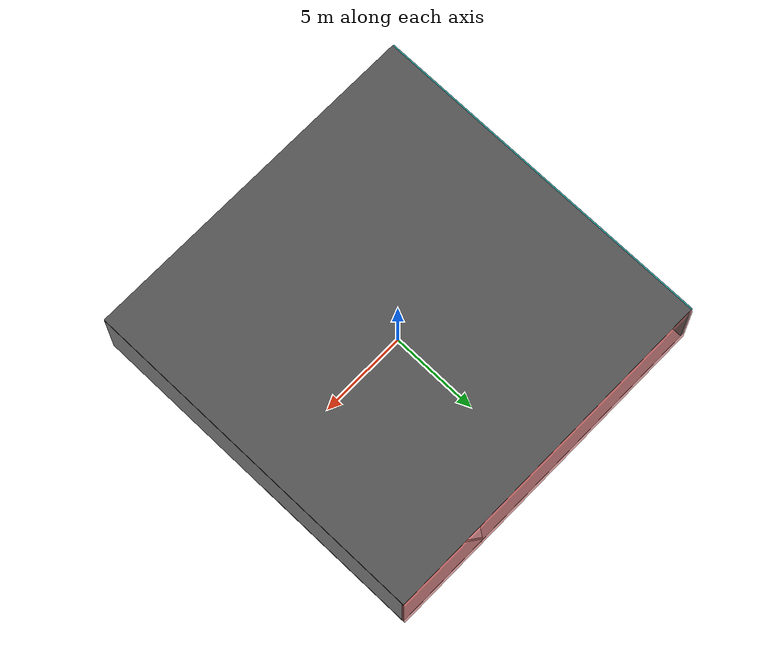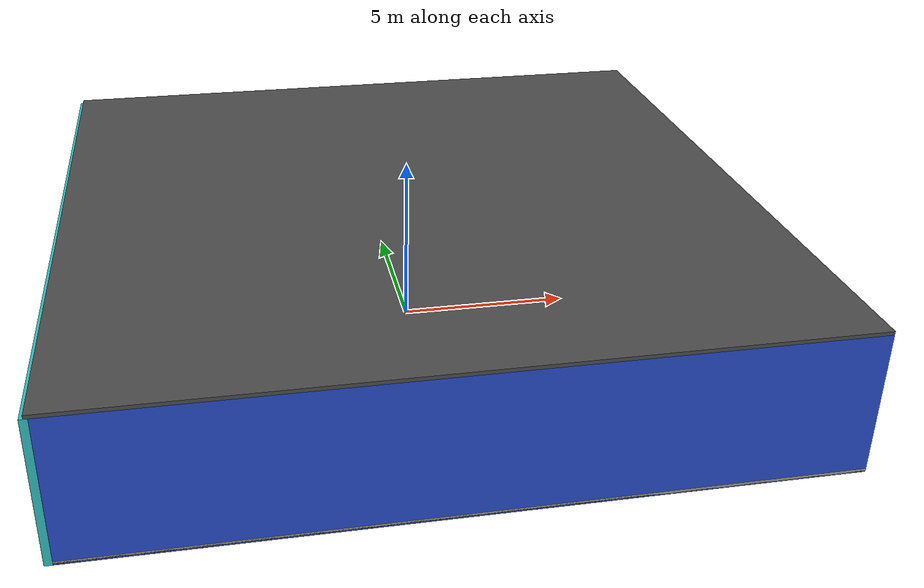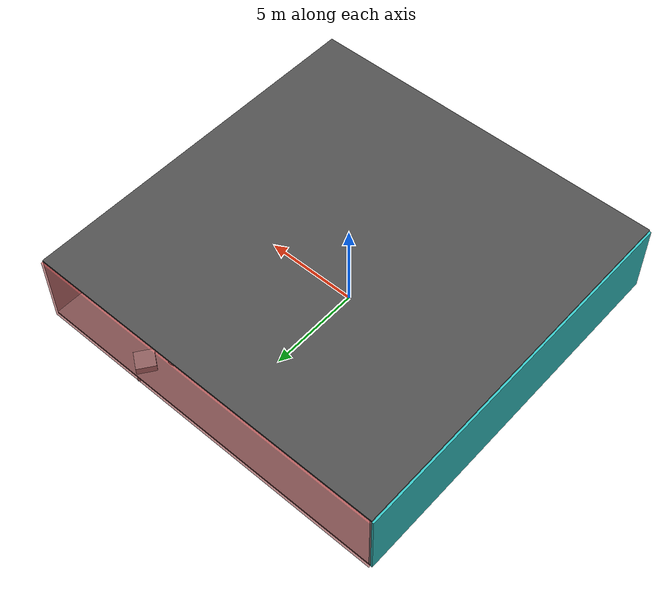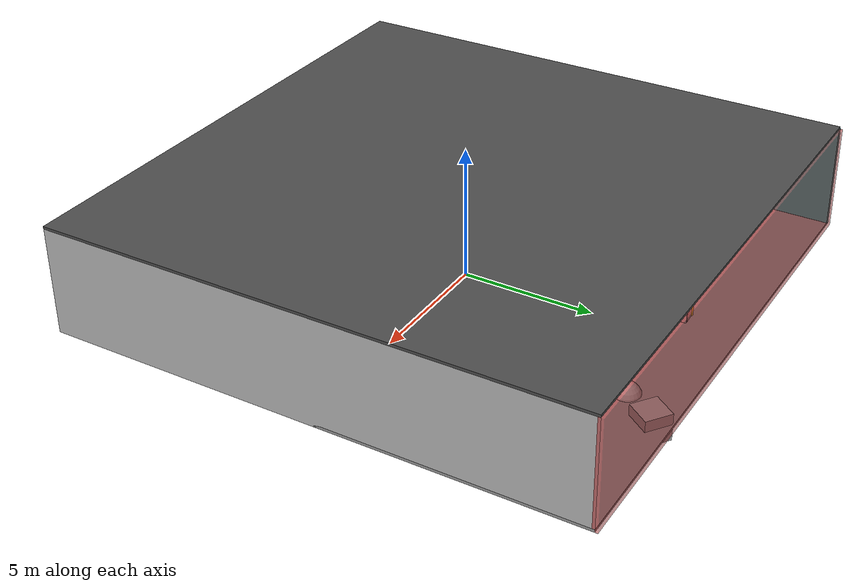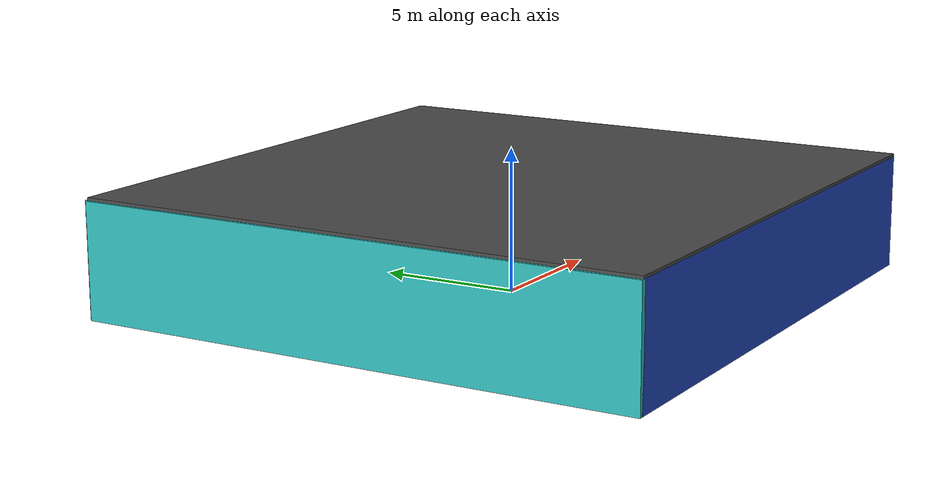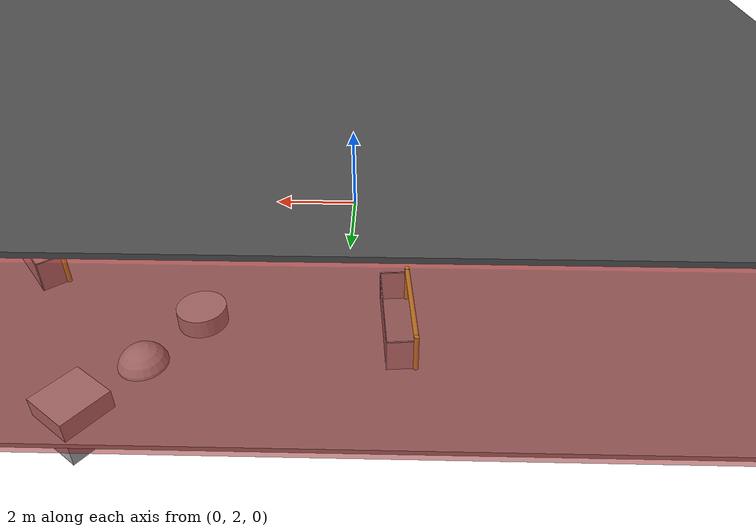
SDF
<sdf version="1.4">
 <world name="default">
  <physics type="ode">
   <max_step_size>0.001</max_step_size>
   <real_time_factor>1</real_time_factor>
   <real_time_update_rate>1000</real_time_update_rate>
   <gravity>0 0 -9.8</gravity>
  </physics>
  <scene><ambient>0.4 0.4 0.4 1</ambient><background>0.7 0.7 0.7 1</background><shadows>1</shadows></scene>
  <model name="Surrounding">
   <static>1</static>
   <link name="Ceiling">
    <collision name="Ceiling_Collision"><geometry><box><size>20 20 0.1</size></box></geometry></collision>
    <visual name="Ceiling_Visual">
     <geometry><box><size>20 20 0.1</size></box></geometry>
     <material>
      <script><uri>file://media/materials/scripts/gazebo.material</uri><name>Gazebo/Road</name></script>
     </material>
    </visual>
    <pose>0 0 4.05 0 0 0</pose>
   </link>
   <link name="Wall_South">
    <collision name="Wall_South_Collision">
     <geometry><box><size>20 0 4</size></box></geometry>
     <pose>0 0 2 0 -0 0</pose>
    </collision>
    <visual name="Wall_South_Visual">
     <pose>0 0 2 0 -0 0</pose>
     <geometry><box><size>20 0 4</size></box></geometry>
     <material>
      <script><uri>file://media/materials/scripts/gazebo.material</uri><name>Gazebo/BlueLaser</name></script>
     </material>
    </visual>
    <velocity_decay><linear>0</linear><angular>0</angular></velocity_decay>
    <pose>0 -10 0 0 -0 0</pose>
   </link>
   <link name="Wall_East">
    <collision name="Wall_21_Collision">
     <geometry><box><size>20 0 4</size></box></geometry>
     <pose>0 0 2 0 -0 0</pose>
    </collision>
    <visual name="Wall_21_Visual">
     <pose>0 0 2 0 -0 0</pose>
     <geometry><box><size>20 0 4</size></box></geometry>
     <material>
      <script><uri>file://media/materials/scripts/gazebo.material</uri><name>Gazebo/JointAnchor</name></script>
     </material>
    </visual>
    <velocity_decay><linear>0</linear><angular>0</angular></velocity_decay>
    <pose>10 0 0 0 -0 1.5708</pose>
   </link>
   <link name="Wall_North">
    <collision name="Wall_22_Collision">
     <geometry><box><size>20 0.2 4</size></box></geometry>
     <pose>0 0 2 0 -0 0</pose>
    </collision>
    <visual name="Wall_22_Visual">
     <pose>0 0 2 0 -0 0</pose>
     <geometry><box><size>20 0.2 4</size></box></geometry>
     <material>
      <script><uri>file://media/materials/scripts/gazebo.material</uri><name>Gazebo/RedTransparent</name></script>
     </material>
    </visual>
    <velocity_decay><linear>0</linear><angular>0</angular></velocity_decay>
    <pose>0 10 0 0 -0 0</pose>
   </link>
   <link name="Wall_West">
    <collision name="Wall_23_Collision">
     <geometry><box><size>20 0.2 4</size></box></geometry>
     <pose>0 0 2 0 -0 0</pose>
    </collision>
    <visual name="Wall_23_Visual">
     <pose>0 0 2 0 -0 0</pose>
     <geometry><box><size>20 0.2 4</size></box></geometry>
     <material>
      <script>
       <uri>file://media/materials/scripts/gazebo.material</uri>
       <name>Gazebo/TurquoiseGlowOutline</name>
      </script>
     </material>
    </visual>
    <velocity_decay><linear>0</linear><angular>0</angular></velocity_decay>
    <pose>-10 0 0 0 0 -1.5708</pose>
   </link>
   <link name="Ground_link">
    <collision name="collision">
     <pose>0 0 .05 0 -0 0</pose>
     <geometry><box><size>20 20 0.1</size></box></geometry>
    </collision>
    <visual name="visual">
     <pose>0 0 .05 0 -0 0</pose>
     <geometry><box><size>20 20 0.1</size></box></geometry>
     <material>
      <script><uri>file://media/materials/scripts/gazebo.material</uri><name>Gazebo/Grey</name></script>
     </material>
    </visual>
   </link>
   <static>1</static>
  </model>
  <spherical_coordinates>
   <surface_model>EARTH_WGS84</surface_model>
   <latitude_deg>0</latitude_deg>
   <longitude_deg>0</longitude_deg>
   <elevation>0</elevation>
   <heading_deg>0</heading_deg>
  </spherical_coordinates>
  <light name="lightball_0" type="diffuse">
   <diffuse>0.8 0.8 0.8 1</diffuse>
   <specular>0.2 0.2 0.2 1</specular>
   <attenuation>
    <range>100</range>
    <constant>0.7</constant>
    <linear>0.01</linear>
    <quadratic>0.001</quadratic>
   </attenuation>
   <direction>-0.5 0.1 -0.9</direction>
   <pose>-0.775403620595 7.07762670716 3.506652 0 0 0</pose>
  </light>
  <light name="lightball_1" type="diffuse">
   <diffuse>0.8 0.8 0.8 1</diffuse>
   <specular>0.2 0.2 0.2 1</specular>
   <attenuation>
    <range>100</range>
    <constant>0.7</constant>
    <linear>0.01</linear>
    <quadratic>0.001</quadratic>
   </attenuation>
   <direction>-0.5 0.1 -0.9</direction>
   <pose>-4.79180975204 8.19177250927 0.751852382206 0 0 0</pose>
  </light>
  <light name="lightball_2" type="diffuse">
   <diffuse>0.8 0.8 0.8 1</diffuse>
   <specular>0.2 0.2 0.2 1</specular>
   <attenuation>
    <range>100</range>
    <constant>0.7</constant>
    <linear>0.01</linear>
    <quadratic>0.001</quadratic>
   </attenuation>
   <direction>-0.5 0.1 -0.9</direction>
   <pose>3.6686765872 -2.72567659192 1.64141251857 0 0 0</pose>
  </light>
  <light name="lightball_3" type="diffuse">
   <diffuse>0.8 0.8 0.8 1</diffuse>
   <specular>0.2 0.2 0.2 1</specular>
   <attenuation>
    <range>100</range>
    <constant>0.7</constant>
    <linear>0.01</linear>
    <quadratic>0.001</quadratic>
   </attenuation>
   <direction>-0.5 0.1 -0.9</direction>
   <pose>-2.905698458 -8.21881280576 1.313402155 0 0 0</pose>
  </light>
  <light name="lightball_4" type="diffuse">
   <diffuse>0.8 0.8 0.8 1</diffuse>
   <specular>0.2 0.2 0.2 1</specular>
   <attenuation>
    <range>100</range>
    <constant>0.7</constant>
    <linear>0.01</linear>
    <quadratic>0.001</quadratic>
   </attenuation>
   <direction>-0.5 0.1 -0.9</direction>
   <pose>0.441042305721 0.861597721815 2.05817164727 0 0 0</pose>
  </light>
  <light name="lightball_5" type="diffuse">
   <diffuse>0.8 0.8 0.8 1</diffuse>
   <specular>0.2 0.2 0.2 1</specular>
   <attenuation>
    <range>100</range>
    <constant>0.7</constant>
    <linear>0.01</linear>
    <quadratic>0.001</quadratic>
   </attenuation>
   <direction>-0.5 0.1 -0.9</direction>
   <pose>-8.52657312798 -5.15577111114 2.26490155556 0 0 0</pose>
  </light>
  <light name="lightball_6" type="diffuse">
   <diffuse>0.8 0.8 0.8 1</diffuse>
   <specular>0.2 0.2 0.2 1</specular>
   <attenuation>
    <range>100</range>
    <constant>0.7</constant>
    <linear>0.01</linear>
    <quadratic>0.001</quadratic>
   </attenuation>
   <direction>-0.5 0.1 -0.9</direction>
   <pose>-5.38110983416 2.54185073829 2.12790783164 0 0 0</pose>
  </light>
  <light name="lightball_7" type="diffuse">
   <diffuse>0.8 0.8 0.8 1</diffuse>
   <specular>0.2 0.2 0.2 1</specular>
   <attenuation>
    <range>100</range>
    <constant>0.7</constant>
    <linear>0.01</linear>
    <quadratic>0.001</quadratic>
   </attenuation>
   <direction>-0.5 0.1 -0.9</direction>
   <pose>8.31191481723 -0.389704007689 3.43441586048 0 0 0</pose>
  </light>
  <light name="lightball_8" type="diffuse">
   <diffuse>0.8 0.8 0.8 1</diffuse>
   <specular>0.2 0.2 0.2 1</specular>
   <attenuation>
    <range>100</range>
    <constant>0.7</constant>
    <linear>0.01</linear>
    <quadratic>0.001</quadratic>
   </attenuation>
   <direction>-0.5 0.1 -0.9</direction>
   <pose>-8.05557475101 9.4612004826 0.771667790555 0 0 0</pose>
  </light>
  <light name="lightball_9" type="diffuse">
   <diffuse>0.8 0.8 0.8 1</diffuse>
   <specular>0.2 0.2 0.2 1</specular>
   <attenuation>
    <range>100</range>
    <constant>0.7</constant>
    <linear>0.01</linear>
    <quadratic>0.001</quadratic>
   </attenuation>
   <direction>-0.5 0.1 -0.9</direction>
   <pose>5.67901240545 5.59740378169 3.03395032299 0 0 0</pose>
  </light>
  <light name="lightball_10" type="diffuse">
   <diffuse>0.8 0.8 0.8 1</diffuse>
   <specular>0.2 0.2 0.2 1</specular>
   <attenuation>
    <range>100</range>
    <constant>0.7</constant>
    <linear>0.01</linear>
    <quadratic>0.001</quadratic>
   </attenuation>
   <direction>-0.5 0.1 -0.9</direction>
   <pose>4.65199172884 7.17913042862 2.66395533294 0 0 0</pose>
  </light>
  <light name="lightball_11" type="diffuse">
   <diffuse>0.8 0.8 0.8 1</diffuse>
   <specular>0.2 0.2 0.2 1</specular>
   <attenuation>
    <range>100</range>
    <constant>0.7</constant>
    <linear>0.01</linear>
    <quadratic>0.001</quadratic>
   </attenuation>
   <direction>-0.5 0.1 -0.9</direction>
   <pose>6.62067206168 -4.39592074499 0.578176307679 0 0 0</pose>
  </light>
  <light name="lightball_12" type="diffuse">
   <diffuse>0.8 0.8 0.8 1</diffuse>
   <specular>0.2 0.2 0.2 1</specular>
   <attenuation>
    <range>100</range>
    <constant>0.7</constant>
    <linear>0.01</linear>
    <quadratic>0.001</quadratic>
   </attenuation>
   <direction>-0.5 0.1 -0.9</direction>
   <pose>-0.360181140788 6.11689497972 2.09764898158 0 0 0</pose>
  </light>
  <light name="lightball_13" type="diffuse">
   <diffuse>0.8 0.8 0.8 1</diffuse>
   <specular>0.2 0.2 0.2 1</specular>
   <attenuation>
    <range>100</range>
    <constant>0.7</constant>
    <linear>0.01</linear>
    <quadratic>0.001</quadratic>
   </attenuation>
   <direction>-0.5 0.1 -0.9</direction>
   <pose>-7.97299615749 -6.63813672845 1.19346173966 0 0 0</pose>
  </light>
  <include><uri>model://cabinet</uri><pose>-7.85596239655 -2.27371284083 0 0 0 3.13416180577</pose></include>
  <include>
   <uri>model://robocup_3Dsim_goal</uri>
   <pose>-1.40400668759 7.01696413799 0 0 0 0.0808837709966</pose>
  </include>
  <include>
   <uri>model://textured_shapes</uri>
   <pose>3.70162164864 8.04542550258 0 0 0 2.51719946227</pose>
  </include>
  <include><uri>model://cabinet</uri><pose>7.56942641241 -6.95407834902 0 0 0 2.438417694</pose></include>
  <include><uri>model://cabinet</uri><pose>7.32061213198 -2.23862087343 0 0 0 1.91071900755</pose></include>
  <include>
   <uri>model://robocup_3Dsim_goal</uri>
   <pose>6.76165129168 4.74709698217 0 0 0 0.700942345587</pose>
  </include>
 </world>
</sdf>

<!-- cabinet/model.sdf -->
<sdf version="1.5">
  <model name="cabinet">
    <static>true</static>
    <link name="cabinet_bottom_plate">
      <inertial>
        <pose>0 0 -1 0 0 0</pose>
        <inertia>
          <ixx>2.050000</ixx>
          <ixy>0</ixy>
          <ixz>0</ixz>
          <iyy>2.050000</iyy>
          <iyz>0</iyz>
          <izz>2.050000</izz>
        </inertia>
        <mass>25.000000</mass>
      </inertial>
      <collision name="cabinet_bottom_plate_geom">
        <pose>0 0 0.010000 0 0 0</pose>
        <geometry>
          <box>
            <size>0.450000 0.450000 0.020000</size>
          </box>
        </geometry>
      </collision>
      <visual name="cabinet_bottom_plate_geom_visual">
        <pose>0 0 0.010000 0 0 0</pose>
        <geometry>
          <box>
            <size>0.450000 0.450000 0.020000</size>
          </box>
        </geometry>
        <material>
          <script>
            <uri>model://media/materials/scripts/gazebo.material</uri>
            <name>Gazebo/Wood</name>
          </script>
        </material>
      </visual>
      <collision name="cabinet_bottom_plate_geom_cabinet_back_plate">
        <pose>0.235000 0 0.510000 0 0 0</pose>
        <geometry>
          <box>
            <size>0.020000 0.450000 1.020000</size>
          </box>
        </geometry>
      </collision>
      <visual name="cabinet_bottom_plate_geom_cabinet_back_plate_visual">
        <pose>0.235000 0 0.510000 0 0 0</pose>
        <geometry>
          <box>
            <size>0.020000 0.450000 1.020000</size>
          </box>
        </geometry>
        <material>
          <script>
            <uri>model://media/materials/scripts/gazebo.material</uri>
            <name>Gazebo/Wood</name>
          </script>
        </material>
      </visual>
      <collision name="cabinet_bottom_plate_geom_cabinet_left_plate">
        <pose>0 0.235000 0.510000 0 0 0</pose>
        <geometry>
          <box>
            <size>0.450000 0.020000 1.020000</size>
          </box>
        </geometry>
      </collision>
      <visual name="cabinet_bottom_plate_geom_cabinet_left_plate_visual">
        <pose>0 0.235000 0.510000 0 0 0</pose>
        <geometry>
          <box>
            <size>0.450000 0.020000 1.020000</size>
          </box>
        </geometry>
        <material>
          <script>
            <uri>model://media/materials/scripts/gazebo.material</uri>
            <name>Gazebo/Wood</name>
          </script>
        </material>
      </visual>
      <collision name="cabinet_bottom_plate_geom_cabinet_middle_plate">
        <pose>0 0 0.510000 0 0 0</pose>
        <geometry>
          <box>
            <size>0.450000 0.450000 0.020000</size>
          </box>
        </geometry>
      </collision>
      <visual name="cabinet_bottom_plate_geom_cabinet_middle_plate_visual">
        <pose>0 0 0.510000 0 0 0</pose>
        <geometry>
          <box>
            <size>0.450000 0.450000 0.020000</size>
          </box>
        </geometry>
        <material>
          <script>
            <uri>model://media/materials/scripts/gazebo.material</uri>
            <name>Gazebo/Wood</name>
          </script>
        </material>
      </visual>
      <collision name="cabinet_bottom_plate_geom_cabinet_right_plate">
        <pose>0 -0.235000 0.510000 0 0 0</pose>
        <geometry>
          <box>
            <size>0.450000 0.020000 1.020000</size>
          </box>
        </geometry>
      </collision>
      <visual name="cabinet_bottom_plate_geom_cabinet_right_plate_visual">
        <pose>0 -0.235000 0.510000 0 0 0</pose>
        <geometry>
          <box>
            <size>0.450000 0.020000 1.020000</size>
          </box>
        </geometry>
        <material>
          <script>
            <uri>model://media/materials/scripts/gazebo.material</uri>
            <name>Gazebo/Wood</name>
          </script>
        </material>
      </visual>
      <collision name="cabinet_bottom_plate_geom_cabinet_top_plate">
        <pose>0 0 1.010000 0 0 0</pose>
        <geometry>
          <box>
            <size>0.450000 0.450000 0.020000</size>
          </box>
        </geometry>
      </collision>
      <visual name="cabinet_bottom_plate_geom_cabinet_top_plate_visual">
        <pose>0 0 1.010000 0 0 0</pose>
        <geometry>
          <box>
            <size>0.450000 0.450000 0.020000</size>
          </box>
        </geometry>
        <material>
          <script>
            <uri>model://media/materials/scripts/gazebo.material</uri>
            <name>Gazebo/Wood</name>
          </script>
        </material>
      </visual>
    </link>
  </model>
</sdf>

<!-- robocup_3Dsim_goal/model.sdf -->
<sdf version="1.5">
  <model name="robocup_3d_goal">
    <static>true</static>
    <link name="left_post">
      <pose>0 1.05 0.45 0 0 0</pose>
      <collision name="collision">
        <geometry>
          <cylinder>
            <radius>0.05</radius>
            <length>0.9</length>
          </cylinder>
        </geometry>
      </collision>
      <visual name="visual">
        <geometry>
          <cylinder>
            <radius>0.05</radius>
            <length>0.9</length>
          </cylinder>
        </geometry>
        <material>
          <script>
            <uri>file://media/materials/scripts/gazebo.material</uri>
            <name>Gazebo/ZincYellow</name>
          </script>
        </material>
      </visual>
    </link>
    <link name="left_support_horiz_lower">
      <pose>0.30 1.05 0.01 0 0 0</pose>
      <collision name="collision">
        <geometry>
          <box>
            <size>0.50 0.02 0.02</size>
          </box>
        </geometry>
      </collision>
      <visual name="visual">
        <geometry>
          <box>
            <size>0.50 0.02 0.02</size>
          </box>
        </geometry>
        <material>
          <script>
            <uri>file://media/materials/scripts/gazebo.material</uri>
            <name>Gazebo/White</name>
          </script>
        </material>
      </visual>
    </link>
    <link name="left_support_horiz_upper">
      <pose>0.30 1.05 0.79 0 0 0</pose>
      <collision name="collision">
        <geometry>
          <box>
            <size>0.50 0.02 0.02</size>
          </box>
        </geometry>
      </collision>
      <visual name="visual">
        <geometry>
          <box>
            <size>0.50 0.02 0.02</size>
          </box>
        </geometry>
        <material>
          <script>
            <uri>file://media/materials/scripts/gazebo.material</uri>
            <name>Gazebo/White</name>
          </script>
        </material>
      </visual>
    </link>
    <link name="left_support_vertical">
      <pose>0.56 1.05 0.4 0 1.5708 0</pose>
      <collision name="collision">
        <geometry>
          <box>
            <size>0.80 0.02 0.02</size>
          </box>
        </geometry>
      </collision>
      <visual name="visual">
        <geometry>
          <box>
            <size>0.80 0.02 0.02</size>
          </box>
        </geometry>
        <material>
          <script>
            <uri>file://media/materials/scripts/gazebo.material</uri>
            <name>Gazebo/White</name>
          </script>
        </material>
      </visual>
    </link>
    <link name="right_support_horiz_lower">
      <pose>0.30 -1.05 0.01 0 0 0</pose>
      <collision name="collision">
        <geometry>
          <box>
            <size>0.50 0.02 0.02</size>
          </box>
        </geometry>
      </collision>
      <visual name="visual">
        <geometry>
          <box>
            <size>0.50 0.02 0.02</size>
          </box>
        </geometry>
        <material>
          <script>
            <uri>file://media/materials/scripts/gazebo.material</uri>
            <name>Gazebo/White</name>
          </script>
        </material>
      </visual>
    </link>
    <link name="right_support_horiz_upper">
      <pose>0.30 -1.05 0.79 0 0 0</pose>
      <collision name="collision">
        <geometry>
          <box>
            <size>0.50 0.02 0.02</size>
          </box>
        </geometry>
      </collision>
      <visual name="visual">
        <geometry>
          <box>
            <size>0.50 0.02 0.02</size>
          </box>
        </geometry>
        <material>
          <script>
            <uri>file://media/materials/scripts/gazebo.material</uri>
            <name>Gazebo/White</name>
          </script>
        </material>
      </visual>
    </link>
    <link name="right_support_vertical">
      <pose>0.56 -1.05 0.4 0 1.5708 0</pose>
      <collision name="collision">
        <geometry>
          <box>
            <size>0.80 0.02 0.02</size>
          </box>
        </geometry>
      </collision>
      <visual name="visual">
        <geometry>
          <box>
            <size>0.80 0.02 0.02</size>
          </box>
        </geometry>
        <material>
          <script>
            <uri>file://media/materials/scripts/gazebo.material</uri>
            <name>Gazebo/White</name>
          </script>
        </material>
      </visual>
    </link>
    <link name="center_support_horiz_lower">
      <pose>0.56 0 0.01 0 1.5708 0</pose>
      <collision name="collision">
        <geometry>
          <box>
            <size>0.02 2.08 0.02</size>
          </box>
        </geometry>
      </collision>
      <visual name="visual">
        <geometry>
          <box>
            <size>0.02 2.08 0.02</size>
          </box>
        </geometry>
        <material>
          <script>
            <uri>file://media/materials/scripts/gazebo.material</uri>
            <name>Gazebo/White</name>
          </script>
        </material>
      </visual>
    </link>
    <link name="center_support_horiz_upper">
      <pose>0.56 0 0.79 0 1.5708 0</pose>
      <collision name="collision">
        <geometry>
          <box>
            <size>0.02 2.08 0.02</size>
          </box>
        </geometry>
      </collision>
      <visual name="visual">
        <geometry>
          <box>
            <size>0.02 2.08 0.02</size>
          </box>
        </geometry>
        <material>
          <script>
            <uri>file://media/materials/scripts/gazebo.material</uri>
            <name>Gazebo/White</name>
          </script>
        </material>
      </visual>
    </link>
    <link name="right_post">
      <pose>0 -1.05 0.45 0 0 0</pose>
      <collision name="collision">
        <geometry>
          <cylinder>
            <radius>0.05</radius>
            <length>0.9</length>
          </cylinder>
        </geometry>
      </collision>
      <visual name="visual">
        <geometry>
          <cylinder>
            <radius>0.05</radius>
            <length>0.9</length>
          </cylinder>
        </geometry>
        <material>
          <script>
            <uri>file://media/materials/scripts/gazebo.material</uri>
            <name>Gazebo/ZincYellow</name>
          </script>
        </material>
      </visual>
    </link>
    <link name="crossbar">
      <pose>0 0 0.85 1.57 1.57 0</pose>
      <collision name="collision">
        <geometry>
          <cylinder>
            <radius>0.05</radius>
            <length>2.0</length>
          </cylinder>
        </geometry>
      </collision>
      <visual name="visual">
        <geometry>
          <cylinder>
            <radius>0.05</radius>
            <length>2.0</length>
          </cylinder>
        </geometry>
        <material>
          <script>
            <uri>file://media/materials/scripts/gazebo.material</uri>
            <name>Gazebo/ZincYellow</name>
          </script>
        </material>
      </visual>
    </link>
    <link name="center_net">
      <pose>0.56 0 0.40 0 0 0</pose>
      <collision name="collision">
        <geometry>
          <box>
            <size>0.01 2.1 0.80</size>
          </box>
        </geometry>
      </collision>
      <visual name="visual">
        <geometry>
          <box>
            <size>0.01 2.1 0.80</size>
          </box>
        </geometry>
        <material>
          <script>
            <uri>model://../model_source/models/robocup09_spl_field/materials/scripts/</uri>
            <uri>model://../model_source/models/robocup09_spl_field/materials/textures/</uri>
            <name>RoboCup/Net</name>
          </script>
        </material>
      </visual>
    </link>
    <link name="left_net">
      <pose>0.30 1.05 0.40 0 0 0</pose>
      <collision name="collision">
        <geometry>
          <box>
            <size>0.50 0.01 0.76</size>
          </box>
        </geometry>
      </collision>
      <visual name="visual">
        <geometry>
          <box>
            <size>0.50 0.01 0.76</size>
          </box>
        </geometry>
        <material>
          <script>
            <uri>model://../model_source/models/robocup09_spl_field/materials/scripts/</uri>
            <uri>model://../model_source/models/robocup09_spl_field/materials/textures/</uri>
            <name>RoboCup/Net</name>
          </script>
        </material>
      </visual>
    </link>
    <link name="right_net">
      <pose>0.30 -1.05 0.40 0 0 0</pose>
      <collision name="collision">
        <geometry>
          <box>
            <size>0.50 0.01 0.76</size>
          </box>
        </geometry>
      </collision>
      <visual name="visual">
        <geometry>
          <box>
            <size>0.50 0.01 0.76</size>
          </box>
        </geometry>
        <material>
          <script>
            <uri>model://../model_source/models/robocup09_spl_field/materials/scripts/</uri>
            <uri>model://../model_source/models/robocup09_spl_field/materials/textures/</uri>
            <name>RoboCup/Net</name>
          </script>
        </material>
      </visual>
    </link>
  </model>
</sdf>

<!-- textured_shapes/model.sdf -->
<sdf version="1.6">
  <model name="textured_shapes">
    <pose>0 0 0.5 0 0 0</pose>
    <link name="box">
      <pose>0 -1.5 0 0 0 0</pose>
      <collision name="collision">
        <geometry>
          <box>
            <size>1 1 1</size>
          </box>
        </geometry>
      </collision>
      <visual name="visual">
        <geometry>
          <box>
            <size>1 1 1</size>
          </box>
        </geometry>
        <material>
          <script>
            <uri>model://../model_source/models/textured_shapes/materials/scripts</uri>
            <uri>model://../model_source/models/textured_shapes/materials/textures</uri>
            <name>TexturedShape/Squares</name>
          </script>
        </material>
      </visual>
    </link>
    <link name="sphere">
      <collision name="collision">
        <geometry>
          <sphere>
            <radius>0.5</radius>
          </sphere>
        </geometry>
      </collision>
      <visual name="visual">
        <geometry>
          <sphere>
            <radius>0.5</radius>
          </sphere>
        </geometry>
        <material>
          <script>
            <uri>model://../model_source/models/textured_shapes/materials/scripts</uri>
            <uri>model://../model_source/models/textured_shapes/materials/textures</uri>
            <name>TexturedShape/Squares</name>
          </script>
        </material>
      </visual>
    </link>
    <link name="cylinder">
      <pose>0 1.5 0 0 0 0</pose>
      <collision name="collision">
        <geometry>
          <cylinder>
            <radius>0.5</radius>
            <length>1</length>
          </cylinder>
        </geometry>
      </collision>
      <visual name="visual">
        <geometry>
          <cylinder>
            <radius>0.5</radius>
            <length>1</length>
          </cylinder>
        </geometry>
        <material>
          <script>
            <uri>model://../model_source/models/textured_shapes/materials/scripts</uri>
            <uri>model://../model_source/models/textured_shapes/materials/textures</uri>
            <name>TexturedShape/Squares</name>
          </script>
        </material>
      </visual>
    </link>
  </model>
</sdf>
